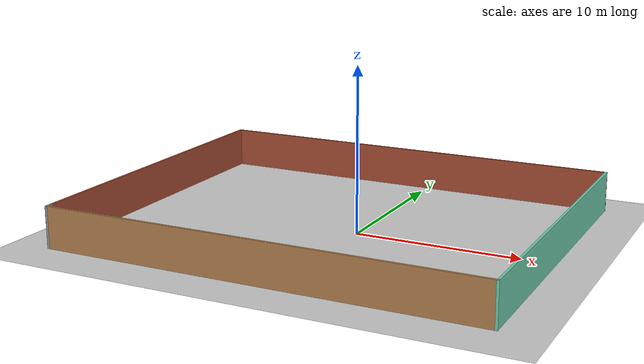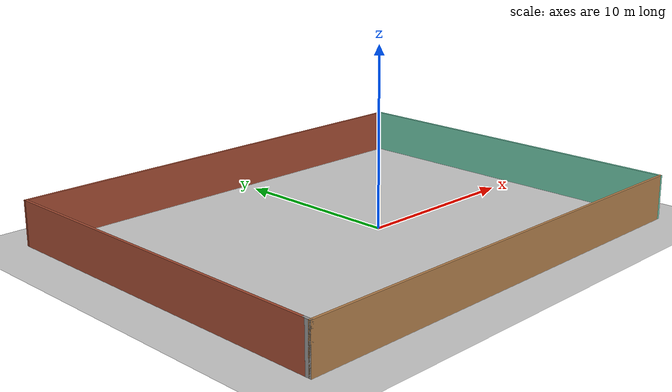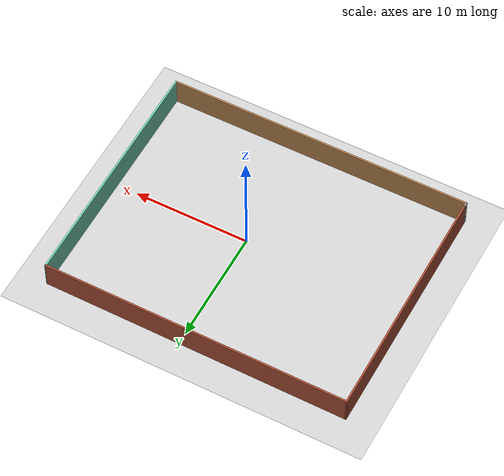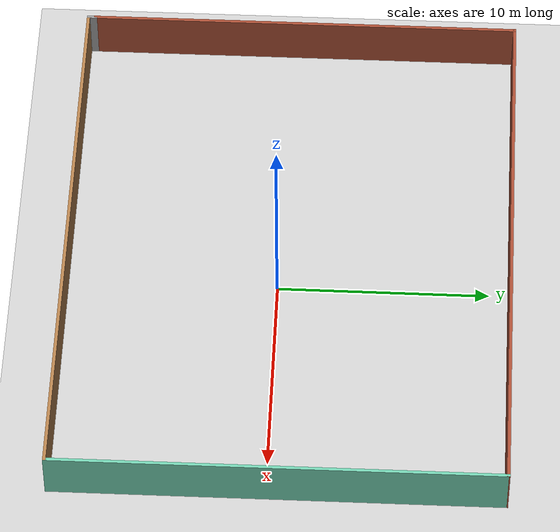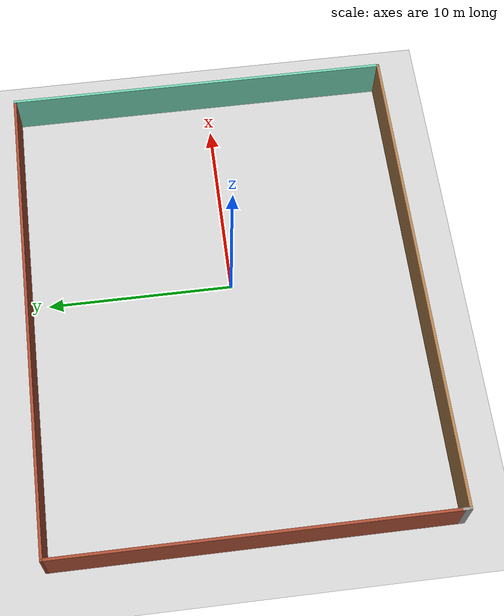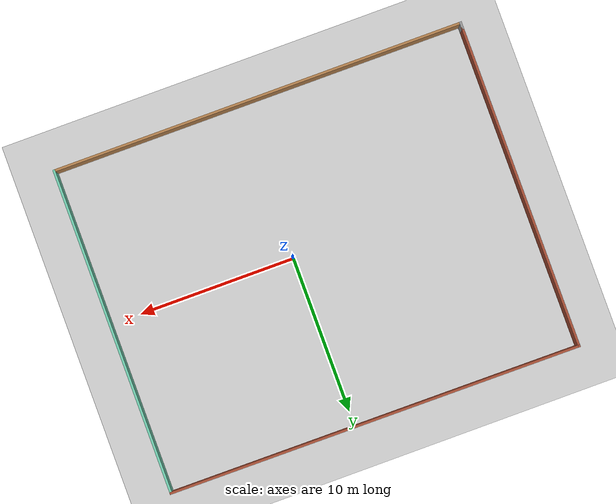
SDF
<sdf version="1.7">
 <world name="default">
  <model name="ground_plane">
   <static>1</static>
   <link name="link">
    <collision name="collision">
     <geometry><plane><normal>0 0 1</normal><size>100 100</size></plane></geometry>
     <surface>
      <contact><collide_bitmask>65535</collide_bitmask></contact>
      <friction><ode><mu>100</mu><mu2>50</mu2></ode></friction>
     </surface>
    </collision>
    <visual name="visual">
     <cast_shadows>0</cast_shadows>
     <geometry><plane><normal>0 0 1</normal><size>100 100</size></plane></geometry>
     <material>
      <script><uri>file://media/materials/scripts/gazebo.material</uri><name>Gazebo/Grey</name></script>
     </material>
    </visual>
   </link>
  </model>
  <model name="lab_walls">
   <pose>-1.30179 0.536022 0 0 -0 0</pose>
   <link name="Wall_10">
    <collision name="Wall_10_Collision">
     <geometry><box><size>20.75 0.15 2.5</size></box></geometry>
     <pose>0 0 1.25 0 -0 0</pose>
    </collision>
    <visual name="Wall_10_Visual">
     <pose>0 0 1.25 0 -0 0</pose>
     <geometry><box><size>20.75 0.15 2.5</size></box></geometry>
     <material>
      <script><uri>file://media/materials/scripts/gazebo.material</uri><name>Gazebo/Bricks</name></script>
      <ambient>1 1 1 1</ambient>
     </material>
     <meta><layer>0</layer></meta>
    </visual>
    <pose>-13.175 0.174858 0 0 -0 -1.5708</pose>
   </link>
   <link name="Wall_11">
    <collision name="Wall_11_Collision">
     <geometry><box><size>0.5 0.15 2.5</size></box></geometry>
     <pose>0 0 1.25 0 -0 0</pose>
    </collision>
    <visual name="Wall_11_Visual">
     <pose>0 0 1.25 0 -0 0</pose>
     <geometry><box><size>0.5 0.15 2.5</size></box></geometry>
     <material>
      <script><uri>file://media/materials/scripts/gazebo.material</uri><name>Gazebo/Grey</name></script>
      <ambient>1 1 1 1</ambient>
     </material>
     <meta><layer>0</layer></meta>
    </visual>
    <pose>-13.175 -10.3001 0 0 -0 -1.5708</pose>
   </link>
   <link name="Wall_12">
    <collision name="Wall_12_Collision">
     <geometry><box><size>26.5 0.15 2.5</size></box></geometry>
     <pose>0 0 1.25 0 -0 0</pose>
    </collision>
    <visual name="Wall_12_Visual">
     <pose>0 0 1.25 0 -0 0</pose>
     <geometry><box><size>26.5 0.15 2.5</size></box></geometry>
     <material>
      <script><uri>file://media/materials/scripts/gazebo.material</uri><name>Gazebo/Wood</name></script>
      <ambient>1 1 1 1</ambient>
     </material>
     <meta><layer>0</layer></meta>
    </visual>
    <pose>0 -10.4751 0 0 -0 0</pose>
   </link>
   <link name="Wall_13">
    <collision name="Wall_13_Collision">
     <geometry><box><size>21 0.15 2.5</size></box></geometry>
     <pose>0 0 1.25 0 -0 0</pose>
    </collision>
    <visual name="Wall_13_Visual">
     <pose>0 0 1.25 0 -0 0</pose>
     <geometry><box><size>21 0.15 2.5</size></box></geometry>
     <material>
      <script><uri>file://media/materials/scripts/gazebo.material</uri><name>Gazebo/Grey</name></script>
      <ambient>0.435294 0.796078 0.67451 1</ambient>
     </material>
     <meta><layer>0</layer></meta>
    </visual>
    <pose>13.175 -0.050142 0 0 -0 1.5708</pose>
   </link>
   <link name="Wall_14">
    <collision name="Wall_14_Collision">
     <geometry><box><size>26.5 0.15 2.5</size></box></geometry>
     <pose>0 0 1.25 0 -0 0</pose>
    </collision>
    <visual name="Wall_14_Visual">
     <pose>0 0 1.25 0 -0 0</pose>
     <geometry><box><size>26.5 0.15 2.5</size></box></geometry>
     <material>
      <script><uri>file://media/materials/scripts/gazebo.material</uri><name>Gazebo/Bricks</name></script>
      <ambient>1 1 1 1</ambient>
     </material>
     <meta><layer>0</layer></meta>
    </visual>
    <pose>0 10.4249 0 0 -0 3.1378</pose>
   </link>
   <static>1</static>
  </model>
 </world>
</sdf>
